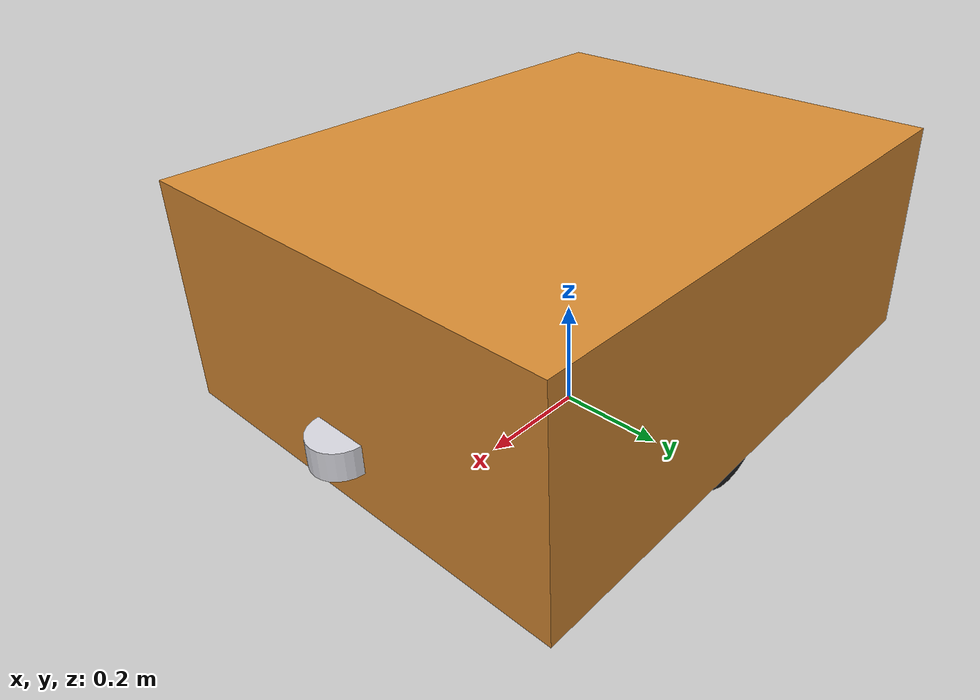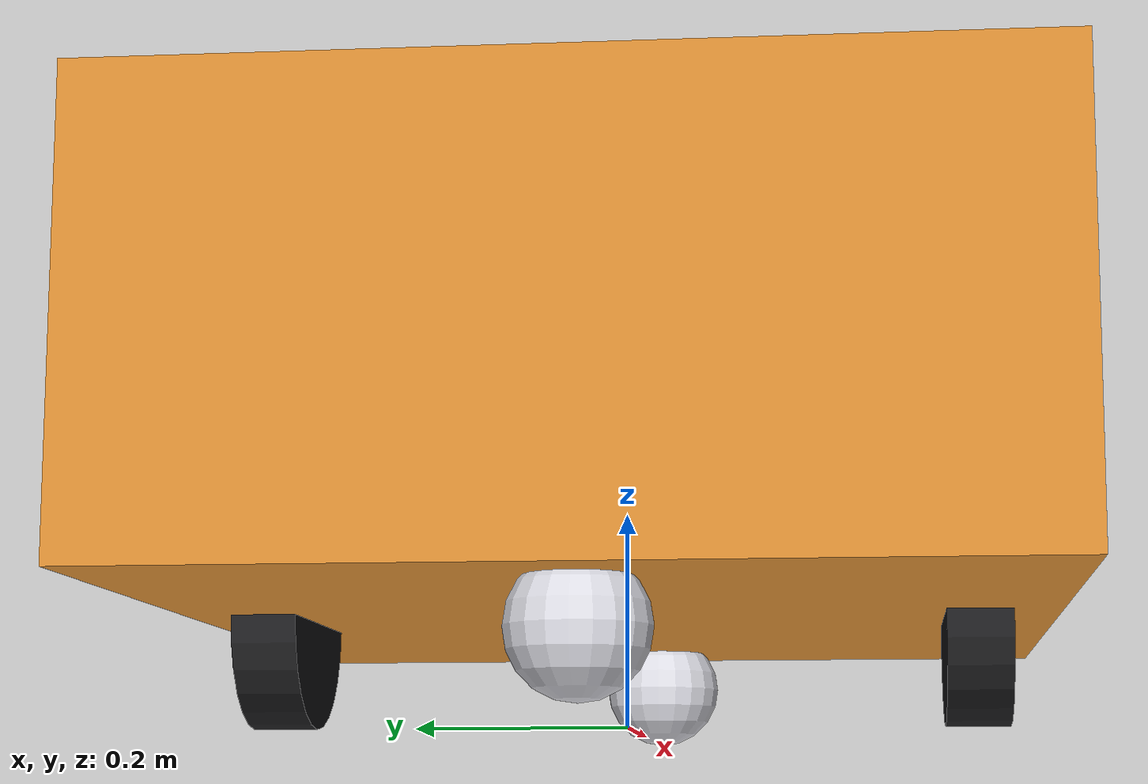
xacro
<?xml version="1.0"?>
<robot xmlns:xacro="http://www.ros.org/wiki/xacro" name="p2bot_lift_l">

  <!-- ..................... namespace / prefix ..................... -->
  <xacro:arg name="namespace" default=""/>
  <xacro:property name="ns" value="$(arg namespace)"/>
  <xacro:property name="fp" value="${ns + '/' if ns != '' else ''}"/>

  <!-- ..................... 치수 ([표1] LIFT_L) ..................... -->
  <xacro:property name="chassis_l" value="1.0"/>
  <xacro:property name="chassis_w" value="0.8"/>
  <xacro:property name="total_h"   value="0.5"/>     <!-- 지면~상단 -->
  <xacro:property name="chassis_mass" value="120"/>

  <xacro:property name="wheel_radius" value="0.1"/>
  <xacro:property name="wheel_width"  value="0.06"/>
  <xacro:property name="wheel_track"  value="0.65"/>
  <xacro:property name="wheel_mass"   value="2.0"/>

  <!-- 섀시 범위 z: 0.1 ~ 0.5 -->
  <xacro:property name="chassis_h" value="${total_h - wheel_radius}"/>

  <xacro:property name="caster_radius" value="0.06"/>
  <xacro:property name="caster_x" value="0.4"/>

  <!-- 라이다: 공통 스캔 평면. 상단 배치로 바꾸려면 lidar_z / lidar_x 두 줄만 수정 -->
  <xacro:property name="lidar_z"      value="0.2"/>
  <xacro:property name="lidar_radius" value="0.05"/>
  <xacro:property name="lidar_x" value="${chassis_l/2}"/>

  <xacro:arg name="two_d_lidar_enabled" default="true"/>

  <!-- ..................... 재질 ..................... -->
  <material name="p2_liftl_body"><color rgba="0.85 0.55 0.20 1.0"/></material>
  <material name="p2_wheel"><color rgba="0.12 0.12 0.13 1.0"/></material>
  <material name="p2_trim"> <color rgba="0.85 0.85 0.88 1.0"/></material>

  <!-- ..................... 관성 매크로 ..................... -->
  <xacro:macro name="box_inertia" params="m x y z">
    <inertial><mass value="${m}"/>
      <inertia ixx="${m*(y*y+z*z)/12}" ixy="0" ixz="0"
               iyy="${m*(x*x+z*z)/12}" iyz="0" izz="${m*(x*x+y*y)/12}"/>
    </inertial>
  </xacro:macro>
  <xacro:macro name="cyl_inertia" params="m r h">
    <inertial><mass value="${m}"/>
      <inertia ixx="${m*(3*r*r+h*h)/12}" ixy="0" ixz="0"
               iyy="${m*(3*r*r+h*h)/12}" iyz="0" izz="${m*r*r/2}"/>
    </inertial>
  </xacro:macro>
  <xacro:macro name="sph_inertia" params="m r">
    <inertial><mass value="${m}"/>
      <inertia ixx="${2*m*r*r/5}" ixy="0" ixz="0"
               iyy="${2*m*r*r/5}" iyz="0" izz="${2*m*r*r/5}"/>
    </inertial>
  </xacro:macro>

  <!-- ..................... GAZEBO 플러그인 ..................... -->
  <gazebo>
    <plugin filename="gz-sim-joint-state-publisher-system"
            name="gz::sim::systems::JointStatePublisher">
      <topic>/${fp}joint_states</topic>
      <joint_name>left_wheel_joint</joint_name>
      <joint_name>right_wheel_joint</joint_name>
    </plugin>
    <plugin filename="gz-sim-diff-drive-system" name="gz::sim::systems::DiffDrive">
      <left_joint>left_wheel_joint</left_joint>
      <right_joint>right_wheel_joint</right_joint>
      <wheel_separation>${wheel_track}</wheel_separation>
      <wheel_radius>${wheel_radius}</wheel_radius>
      <odom_publish_frequency>30</odom_publish_frequency>
      <topic>/${fp}cmd_vel</topic>
      <frame_id>${fp}odom</frame_id>
      <child_frame_id>${fp}base_footprint</child_frame_id>
    </plugin>
    <plugin filename="gz-sim-odometry-publisher-system"
            name="gz::sim::systems::OdometryPublisher">
      <odom_frame>${fp}odom</odom_frame>
      <robot_base_frame>${fp}base_footprint</robot_base_frame>
      <odom_topic>/${fp}odom</odom_topic>
      <tf_topic>/${fp}tf</tf_topic>
      <dimensions>2</dimensions>
      <odom_publish_frequency>30</odom_publish_frequency>
    </plugin>
  </gazebo>

  <!-- ..................... BASE ..................... -->
  <link name="${fp}base_footprint"/>
  <link name="${fp}base_link"/>
  <joint name="base_joint" type="fixed">
    <parent link="${fp}base_footprint"/>
    <child link="${fp}base_link"/>
    <origin xyz="0 0 ${chassis_h/2 + wheel_radius}" rpy="0 0 0"/>
  </joint>

  <link name="${fp}chassis_link">
    <collision><geometry><box size="${chassis_l} ${chassis_w} ${chassis_h}"/></geometry></collision>
    <visual>
      <geometry><box size="${chassis_l} ${chassis_w} ${chassis_h}"/></geometry>
      <material name="p2_liftl_body"/>
    </visual>
    <xacro:box_inertia m="${chassis_mass}" x="${chassis_l}" y="${chassis_w}" z="${chassis_h}"/>
  </link>
  <joint name="chassis_joint" type="fixed">
    <parent link="${fp}base_link"/><child link="${fp}chassis_link"/>
    <origin xyz="0 0 0" rpy="0 0 0"/>
  </joint>
  <gazebo reference="${fp}chassis_link"><material>Gazebo/Orange</material></gazebo>

  <!-- ..................... 구동륜 ..................... -->
  <xacro:macro name="drive_wheel" params="side reflect">
    <link name="${fp}${side}_wheel">
      <collision>
        <origin xyz="0 0 0" rpy="${pi/2} 0 0"/>
        <geometry><cylinder radius="${wheel_radius}" length="${wheel_width}"/></geometry>
        <surface><friction><ode><mu>5.0</mu><mu2>5.0</mu2></ode></friction></surface>
      </collision>
      <visual>
        <origin xyz="0 0 0" rpy="${pi/2} 0 0"/>
        <geometry><cylinder radius="${wheel_radius}" length="${wheel_width}"/></geometry>
        <material name="p2_wheel"/>
      </visual>
      <xacro:cyl_inertia m="${wheel_mass}" r="${wheel_radius}" h="${wheel_width}"/>
    </link>
    <joint name="${side}_wheel_joint" type="continuous">
      <parent link="${fp}base_link"/><child link="${fp}${side}_wheel"/>
      <origin xyz="0 ${reflect*wheel_track/2} ${-chassis_h/2}" rpy="0 0 0"/>
      <axis xyz="0 1 0"/>
    </joint>
    <gazebo reference="${fp}${side}_wheel">
      <material>Gazebo/DarkGrey</material>
      <mu1>5.0</mu1><mu2>5.0</mu2>
    </gazebo>
  </xacro:macro>
  <xacro:drive_wheel side="left"  reflect="1"/>
  <xacro:drive_wheel side="right" reflect="-1"/>

  <!-- ..................... 캐스터 ..................... -->
  <xacro:macro name="caster" params="side sign">
    <link name="${fp}caster_${side}">
      <collision>
        <geometry><sphere radius="${caster_radius}"/></geometry>
        <surface><friction><ode><mu>0.0</mu><mu2>0.0</mu2></ode></friction></surface>
      </collision>
      <visual><geometry><sphere radius="${caster_radius}"/></geometry><material name="p2_trim"/></visual>
      <xacro:sph_inertia m="0.3" r="${caster_radius}"/>
    </link>
    <joint name="caster_${side}_joint" type="fixed">
      <parent link="${fp}base_link"/><child link="${fp}caster_${side}"/>
      <origin xyz="${sign*caster_x} 0 ${-chassis_h/2 - (wheel_radius-caster_radius)}" rpy="0 0 0"/>
    </joint>
    <gazebo reference="${fp}caster_${side}"><mu1>0.0</mu1><mu2>0.0</mu2></gazebo>
  </xacro:macro>
  <xacro:caster side="front" sign="1"/>
  <xacro:caster side="back"  sign="-1"/>

  <!-- ..................... 2D LIDAR — 전방 저위치(공통 평면) ..................... -->
  <xacro:if value="$(arg two_d_lidar_enabled)">
    <link name="${fp}two_d_lidar">
      <visual><geometry><cylinder radius="${lidar_radius}" length="0.05"/></geometry>
        <material name="p2_trim"/></visual>
      <xacro:cyl_inertia m="0.1" r="${lidar_radius}" h="0.05"/>
    </link>
    <joint name="two_d_lidar_joint" type="fixed">
      <parent link="${fp}base_link"/><child link="${fp}two_d_lidar"/>
      <origin xyz="${lidar_x} 0 ${lidar_z - (chassis_h/2 + wheel_radius)}" rpy="0 0 0"/>
    </joint>
    <gazebo reference="${fp}two_d_lidar">
      <sensor name="gpu_lidar" type="gpu_lidar">
        <topic>/${fp}scan</topic>
        <update_rate>30</update_rate>
        <gz_frame_id>${fp}two_d_lidar</gz_frame_id>
        <lidar>
          <scan><horizontal>
            <samples>1500</samples><resolution>1</resolution>
            <min_angle>${radians(-89)}</min_angle><max_angle>${radians(89)}</max_angle>
          </horizontal></scan>
          <range><min>0.05</min><max>40.0</max><resolution>0.01</resolution></range>
          <noise><type>gaussian</type><mean>0.0</mean><stddev>0.005</stddev></noise>
        </lidar>
        <always_on>1</always_on><visualize>true</visualize>
      </sensor>
    </gazebo>
  </xacro:if>

  <!-- ..................... IMU ..................... -->
  <link name="${fp}imu_frame"/>
  <joint name="imu_joint" type="fixed">
    <parent link="${fp}base_link"/><child link="${fp}imu_frame"/>
    <origin xyz="0 0 ${chassis_h/2}" rpy="0 0 0"/>
  </joint>
  <gazebo reference="${fp}imu_frame">
    <sensor name="p2bot_imu" type="imu">
      <always_on>1</always_on><update_rate>50</update_rate>
      <gz_frame_id>${fp}imu_frame</gz_frame_id><topic>/${fp}imu</topic>
    </sensor>
  </gazebo>

</robot>
